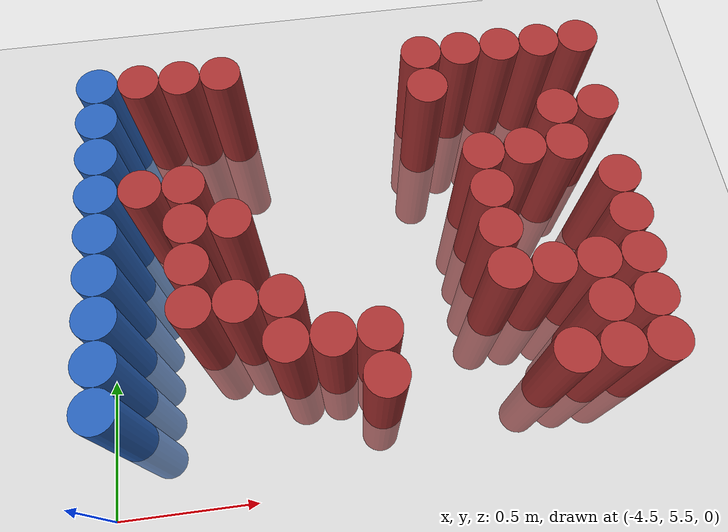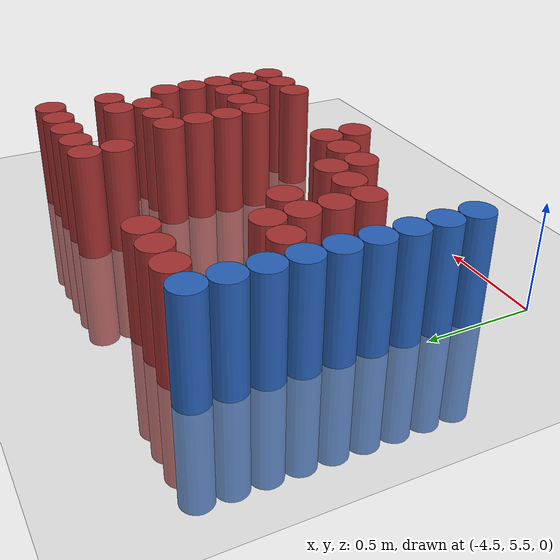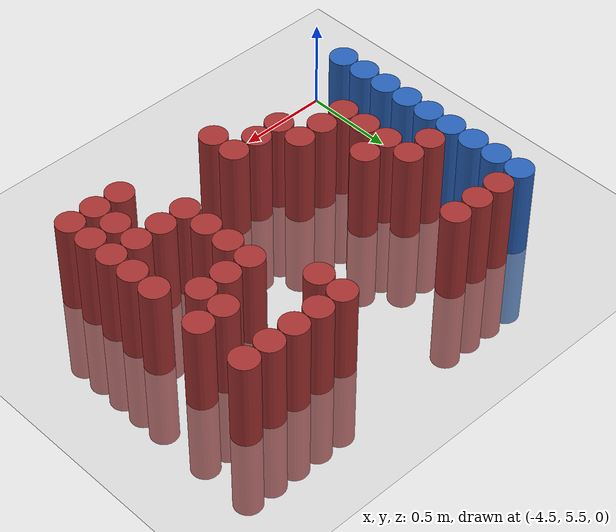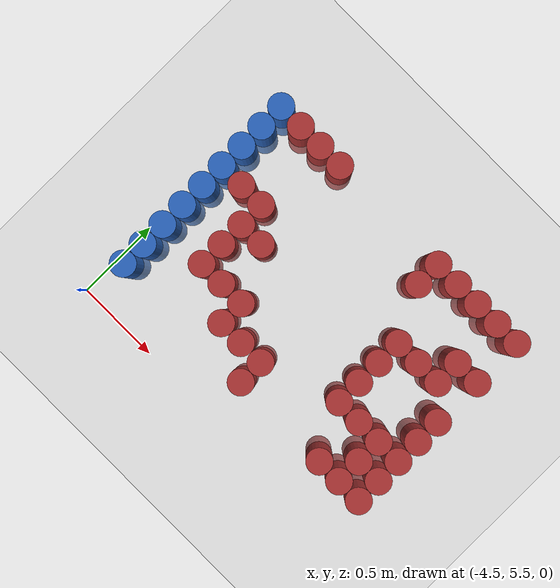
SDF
<sdf version="1.6">
 <world name="default">
  <model name="ground_plane">
   <static>1</static>
   <link name="link">
    <collision name="collision">
     <geometry><plane><normal>0 0 1</normal><size>100 100</size></plane></geometry>
     <surface><friction><ode><mu>100</mu><mu2>50</mu2></ode></friction></surface>
    </collision>
    <visual name="visual">
     <cast_shadows>0</cast_shadows>
     <geometry><plane><normal>0 0 1</normal><size>100 100</size></plane></geometry>
     <material>
      <script><uri>file://media/materials/scripts/gazebo.material</uri><name>Gazebo/Grey</name></script>
     </material>
    </visual>
   </link>
  </model>
  <model name="unit_cylinder_100">
   <static>1</static>
   <pose>-4.425000 5.775000 0.000000 0.000000 0.000000 0.000000</pose>
   <link name="link">
    <inertial>
     <mass>1</mass>
     <inertia><ixx>0.145833</ixx><ixy>0</ixy><ixz>0</ixz><iyy>0.145833</iyy><iyz>0</iyz><izz>0.125</izz></inertia>
    </inertial>
    <collision name="collision">
     <geometry><cylinder><radius>0.075000</radius><length>1</length></cylinder></geometry>
    </collision>
    <visual name="visual">
     <geometry><cylinder><radius>0.075000</radius><length>1</length></cylinder></geometry>
     <material>
      <ambient>0.152000 0.379000 0.720000 1</ambient>
      <diffuse>0.152000 0.379000 0.720000 1</diffuse>
     </material>
     <material>
      <script><name>Gazebo/Grey</name><uri>file://media/materials/scripts/gazebo.material</uri></script>
     </material>
    </visual>
   </link>
  </model>
  <model name="unit_cylinder_101">
   <static>1</static>
   <pose>-4.425000 5.925000 0.000000 0.000000 0.000000 0.000000</pose>
   <link name="link">
    <inertial>
     <mass>1</mass>
     <inertia><ixx>0.145833</ixx><ixy>0</ixy><ixz>0</ixz><iyy>0.145833</iyy><iyz>0</iyz><izz>0.125</izz></inertia>
    </inertial>
    <collision name="collision">
     <geometry><cylinder><radius>0.075000</radius><length>1</length></cylinder></geometry>
    </collision>
    <visual name="visual">
     <geometry><cylinder><radius>0.075000</radius><length>1</length></cylinder></geometry>
     <material>
      <ambient>0.152000 0.379000 0.720000 1</ambient>
      <diffuse>0.152000 0.379000 0.720000 1</diffuse>
     </material>
     <material>
      <script><name>Gazebo/Grey</name><uri>file://media/materials/scripts/gazebo.material</uri></script>
     </material>
    </visual>
   </link>
  </model>
  <model name="unit_cylinder_102">
   <static>1</static>
   <pose>-4.425000 6.075000 0.000000 0.000000 0.000000 0.000000</pose>
   <link name="link">
    <inertial>
     <mass>1</mass>
     <inertia><ixx>0.145833</ixx><ixy>0</ixy><ixz>0</ixz><iyy>0.145833</iyy><iyz>0</iyz><izz>0.125</izz></inertia>
    </inertial>
    <collision name="collision">
     <geometry><cylinder><radius>0.075000</radius><length>1</length></cylinder></geometry>
    </collision>
    <visual name="visual">
     <geometry><cylinder><radius>0.075000</radius><length>1</length></cylinder></geometry>
     <material>
      <ambient>0.152000 0.379000 0.720000 1</ambient>
      <diffuse>0.152000 0.379000 0.720000 1</diffuse>
     </material>
     <material>
      <script><name>Gazebo/Grey</name><uri>file://media/materials/scripts/gazebo.material</uri></script>
     </material>
    </visual>
   </link>
  </model>
  <model name="unit_cylinder_103">
   <static>1</static>
   <pose>-4.425000 6.225000 0.000000 0.000000 0.000000 0.000000</pose>
   <link name="link">
    <inertial>
     <mass>1</mass>
     <inertia><ixx>0.145833</ixx><ixy>0</ixy><ixz>0</ixz><iyy>0.145833</iyy><iyz>0</iyz><izz>0.125</izz></inertia>
    </inertial>
    <collision name="collision">
     <geometry><cylinder><radius>0.075000</radius><length>1</length></cylinder></geometry>
    </collision>
    <visual name="visual">
     <geometry><cylinder><radius>0.075000</radius><length>1</length></cylinder></geometry>
     <material>
      <ambient>0.152000 0.379000 0.720000 1</ambient>
      <diffuse>0.152000 0.379000 0.720000 1</diffuse>
     </material>
     <material>
      <script><name>Gazebo/Grey</name><uri>file://media/materials/scripts/gazebo.material</uri></script>
     </material>
    </visual>
   </link>
  </model>
  <model name="unit_cylinder_104">
   <static>1</static>
   <pose>-4.425000 6.375000 0.000000 0.000000 0.000000 0.000000</pose>
   <link name="link">
    <inertial>
     <mass>1</mass>
     <inertia><ixx>0.145833</ixx><ixy>0</ixy><ixz>0</ixz><iyy>0.145833</iyy><iyz>0</iyz><izz>0.125</izz></inertia>
    </inertial>
    <collision name="collision">
     <geometry><cylinder><radius>0.075000</radius><length>1</length></cylinder></geometry>
    </collision>
    <visual name="visual">
     <geometry><cylinder><radius>0.075000</radius><length>1</length></cylinder></geometry>
     <material>
      <ambient>0.152000 0.379000 0.720000 1</ambient>
      <diffuse>0.152000 0.379000 0.720000 1</diffuse>
     </material>
     <material>
      <script><name>Gazebo/Grey</name><uri>file://media/materials/scripts/gazebo.material</uri></script>
     </material>
    </visual>
   </link>
  </model>
  <model name="unit_cylinder_105">
   <static>1</static>
   <pose>-4.425000 6.525000 0.000000 0.000000 0.000000 0.000000</pose>
   <link name="link">
    <inertial>
     <mass>1</mass>
     <inertia><ixx>0.145833</ixx><ixy>0</ixy><ixz>0</ixz><iyy>0.145833</iyy><iyz>0</iyz><izz>0.125</izz></inertia>
    </inertial>
    <collision name="collision">
     <geometry><cylinder><radius>0.075000</radius><length>1</length></cylinder></geometry>
    </collision>
    <visual name="visual">
     <geometry><cylinder><radius>0.075000</radius><length>1</length></cylinder></geometry>
     <material>
      <ambient>0.152000 0.379000 0.720000 1</ambient>
      <diffuse>0.152000 0.379000 0.720000 1</diffuse>
     </material>
     <material>
      <script><name>Gazebo/Grey</name><uri>file://media/materials/scripts/gazebo.material</uri></script>
     </material>
    </visual>
   </link>
  </model>
  <model name="unit_cylinder_106">
   <static>1</static>
   <pose>-4.425000 6.675000 0.000000 0.000000 0.000000 0.000000</pose>
   <link name="link">
    <inertial>
     <mass>1</mass>
     <inertia><ixx>0.145833</ixx><ixy>0</ixy><ixz>0</ixz><iyy>0.145833</iyy><iyz>0</iyz><izz>0.125</izz></inertia>
    </inertial>
    <collision name="collision">
     <geometry><cylinder><radius>0.075000</radius><length>1</length></cylinder></geometry>
    </collision>
    <visual name="visual">
     <geometry><cylinder><radius>0.075000</radius><length>1</length></cylinder></geometry>
     <material>
      <ambient>0.152000 0.379000 0.720000 1</ambient>
      <diffuse>0.152000 0.379000 0.720000 1</diffuse>
     </material>
     <material>
      <script><name>Gazebo/Grey</name><uri>file://media/materials/scripts/gazebo.material</uri></script>
     </material>
    </visual>
   </link>
  </model>
  <model name="unit_cylinder_107">
   <static>1</static>
   <pose>-4.425000 6.825000 0.000000 0.000000 0.000000 0.000000</pose>
   <link name="link">
    <inertial>
     <mass>1</mass>
     <inertia><ixx>0.145833</ixx><ixy>0</ixy><ixz>0</ixz><iyy>0.145833</iyy><iyz>0</iyz><izz>0.125</izz></inertia>
    </inertial>
    <collision name="collision">
     <geometry><cylinder><radius>0.075000</radius><length>1</length></cylinder></geometry>
    </collision>
    <visual name="visual">
     <geometry><cylinder><radius>0.075000</radius><length>1</length></cylinder></geometry>
     <material>
      <ambient>0.152000 0.379000 0.720000 1</ambient>
      <diffuse>0.152000 0.379000 0.720000 1</diffuse>
     </material>
     <material>
      <script><name>Gazebo/Grey</name><uri>file://media/materials/scripts/gazebo.material</uri></script>
     </material>
    </visual>
   </link>
  </model>
  <model name="unit_cylinder_108">
   <static>1</static>
   <pose>-4.425000 6.975000 0.000000 0.000000 0.000000 0.000000</pose>
   <link name="link">
    <inertial>
     <mass>1</mass>
     <inertia><ixx>0.145833</ixx><ixy>0</ixy><ixz>0</ixz><iyy>0.145833</iyy><iyz>0</iyz><izz>0.125</izz></inertia>
    </inertial>
    <collision name="collision">
     <geometry><cylinder><radius>0.075000</radius><length>1</length></cylinder></geometry>
    </collision>
    <visual name="visual">
     <geometry><cylinder><radius>0.075000</radius><length>1</length></cylinder></geometry>
     <material>
      <ambient>0.152000 0.379000 0.720000 1</ambient>
      <diffuse>0.152000 0.379000 0.720000 1</diffuse>
     </material>
     <material>
      <script><name>Gazebo/Grey</name><uri>file://media/materials/scripts/gazebo.material</uri></script>
     </material>
    </visual>
   </link>
  </model>
  <model name="unit_cylinder_127">
   <static>1</static>
   <pose>-4.275000 6.525000 0.000000 0.000000 0.000000 0.000000</pose>
   <link name="link">
    <inertial>
     <mass>1</mass>
     <inertia><ixx>0.145833</ixx><ixy>0</ixy><ixz>0</ixz><iyy>0.145833</iyy><iyz>0</iyz><izz>0.125</izz></inertia>
    </inertial>
    <collision name="collision">
     <geometry><cylinder><radius>0.075000</radius><length>1</length></cylinder></geometry>
    </collision>
    <visual name="visual">
     <geometry><cylinder><radius>0.075000</radius><length>1</length></cylinder></geometry>
     <material>
      <ambient>0.648000 0.192000 0.192000 1</ambient>
      <diffuse>0.648000 0.192000 0.192000 1</diffuse>
     </material>
     <material>
      <script><name>Gazebo/Grey</name><uri>file://media/materials/scripts/gazebo.material</uri></script>
     </material>
    </visual>
   </link>
  </model>
  <model name="unit_cylinder_128">
   <static>1</static>
   <pose>-4.275000 6.975000 0.000000 0.000000 0.000000 0.000000</pose>
   <link name="link">
    <inertial>
     <mass>1</mass>
     <inertia><ixx>0.145833</ixx><ixy>0</ixy><ixz>0</ixz><iyy>0.145833</iyy><iyz>0</iyz><izz>0.125</izz></inertia>
    </inertial>
    <collision name="collision">
     <geometry><cylinder><radius>0.075000</radius><length>1</length></cylinder></geometry>
    </collision>
    <visual name="visual">
     <geometry><cylinder><radius>0.075000</radius><length>1</length></cylinder></geometry>
     <material>
      <ambient>0.648000 0.192000 0.192000 1</ambient>
      <diffuse>0.648000 0.192000 0.192000 1</diffuse>
     </material>
     <material>
      <script><name>Gazebo/Grey</name><uri>file://media/materials/scripts/gazebo.material</uri></script>
     </material>
    </visual>
   </link>
  </model>
  <model name="unit_cylinder_133">
   <static>1</static>
   <pose>-4.125000 6.075000 0.000000 0.000000 0.000000 0.000000</pose>
   <link name="link">
    <inertial>
     <mass>1</mass>
     <inertia><ixx>0.145833</ixx><ixy>0</ixy><ixz>0</ixz><iyy>0.145833</iyy><iyz>0</iyz><izz>0.125</izz></inertia>
    </inertial>
    <collision name="collision">
     <geometry><cylinder><radius>0.075000</radius><length>1</length></cylinder></geometry>
    </collision>
    <visual name="visual">
     <geometry><cylinder><radius>0.075000</radius><length>1</length></cylinder></geometry>
     <material>
      <ambient>0.648000 0.192000 0.192000 1</ambient>
      <diffuse>0.648000 0.192000 0.192000 1</diffuse>
     </material>
     <material>
      <script><name>Gazebo/Grey</name><uri>file://media/materials/scripts/gazebo.material</uri></script>
     </material>
    </visual>
   </link>
  </model>
  <model name="unit_cylinder_134">
   <static>1</static>
   <pose>-4.125000 6.225000 0.000000 0.000000 0.000000 0.000000</pose>
   <link name="link">
    <inertial>
     <mass>1</mass>
     <inertia><ixx>0.145833</ixx><ixy>0</ixy><ixz>0</ixz><iyy>0.145833</iyy><iyz>0</iyz><izz>0.125</izz></inertia>
    </inertial>
    <collision name="collision">
     <geometry><cylinder><radius>0.075000</radius><length>1</length></cylinder></geometry>
    </collision>
    <visual name="visual">
     <geometry><cylinder><radius>0.075000</radius><length>1</length></cylinder></geometry>
     <material>
      <ambient>0.648000 0.192000 0.192000 1</ambient>
      <diffuse>0.648000 0.192000 0.192000 1</diffuse>
     </material>
     <material>
      <script><name>Gazebo/Grey</name><uri>file://media/materials/scripts/gazebo.material</uri></script>
     </material>
    </visual>
   </link>
  </model>
  <model name="unit_cylinder_135">
   <static>1</static>
   <pose>-4.125000 6.375000 0.000000 0.000000 0.000000 0.000000</pose>
   <link name="link">
    <inertial>
     <mass>1</mass>
     <inertia><ixx>0.145833</ixx><ixy>0</ixy><ixz>0</ixz><iyy>0.145833</iyy><iyz>0</iyz><izz>0.125</izz></inertia>
    </inertial>
    <collision name="collision">
     <geometry><cylinder><radius>0.075000</radius><length>1</length></cylinder></geometry>
    </collision>
    <visual name="visual">
     <geometry><cylinder><radius>0.075000</radius><length>1</length></cylinder></geometry>
     <material>
      <ambient>0.648000 0.192000 0.192000 1</ambient>
      <diffuse>0.648000 0.192000 0.192000 1</diffuse>
     </material>
     <material>
      <script><name>Gazebo/Grey</name><uri>file://media/materials/scripts/gazebo.material</uri></script>
     </material>
    </visual>
   </link>
  </model>
  <model name="unit_cylinder_136">
   <static>1</static>
   <pose>-4.125000 6.525000 0.000000 0.000000 0.000000 0.000000</pose>
   <link name="link">
    <inertial>
     <mass>1</mass>
     <inertia><ixx>0.145833</ixx><ixy>0</ixy><ixz>0</ixz><iyy>0.145833</iyy><iyz>0</iyz><izz>0.125</izz></inertia>
    </inertial>
    <collision name="collision">
     <geometry><cylinder><radius>0.075000</radius><length>1</length></cylinder></geometry>
    </collision>
    <visual name="visual">
     <geometry><cylinder><radius>0.075000</radius><length>1</length></cylinder></geometry>
     <material>
      <ambient>0.648000 0.192000 0.192000 1</ambient>
      <diffuse>0.648000 0.192000 0.192000 1</diffuse>
     </material>
     <material>
      <script><name>Gazebo/Grey</name><uri>file://media/materials/scripts/gazebo.material</uri></script>
     </material>
    </visual>
   </link>
  </model>
  <model name="unit_cylinder_137">
   <static>1</static>
   <pose>-4.125000 6.975000 0.000000 0.000000 0.000000 0.000000</pose>
   <link name="link">
    <inertial>
     <mass>1</mass>
     <inertia><ixx>0.145833</ixx><ixy>0</ixy><ixz>0</ixz><iyy>0.145833</iyy><iyz>0</iyz><izz>0.125</izz></inertia>
    </inertial>
    <collision name="collision">
     <geometry><cylinder><radius>0.075000</radius><length>1</length></cylinder></geometry>
    </collision>
    <visual name="visual">
     <geometry><cylinder><radius>0.075000</radius><length>1</length></cylinder></geometry>
     <material>
      <ambient>0.648000 0.192000 0.192000 1</ambient>
      <diffuse>0.648000 0.192000 0.192000 1</diffuse>
     </material>
     <material>
      <script><name>Gazebo/Grey</name><uri>file://media/materials/scripts/gazebo.material</uri></script>
     </material>
    </visual>
   </link>
  </model>
  <model name="unit_cylinder_140">
   <static>1</static>
   <pose>-3.975000 6.075000 0.000000 0.000000 0.000000 0.000000</pose>
   <link name="link">
    <inertial>
     <mass>1</mass>
     <inertia><ixx>0.145833</ixx><ixy>0</ixy><ixz>0</ixz><iyy>0.145833</iyy><iyz>0</iyz><izz>0.125</izz></inertia>
    </inertial>
    <collision name="collision">
     <geometry><cylinder><radius>0.075000</radius><length>1</length></cylinder></geometry>
    </collision>
    <visual name="visual">
     <geometry><cylinder><radius>0.075000</radius><length>1</length></cylinder></geometry>
     <material>
      <ambient>0.648000 0.192000 0.192000 1</ambient>
      <diffuse>0.648000 0.192000 0.192000 1</diffuse>
     </material>
     <material>
      <script><name>Gazebo/Grey</name><uri>file://media/materials/scripts/gazebo.material</uri></script>
     </material>
    </visual>
   </link>
  </model>
  <model name="unit_cylinder_141">
   <static>1</static>
   <pose>-3.975000 6.375000 0.000000 0.000000 0.000000 0.000000</pose>
   <link name="link">
    <inertial>
     <mass>1</mass>
     <inertia><ixx>0.145833</ixx><ixy>0</ixy><ixz>0</ixz><iyy>0.145833</iyy><iyz>0</iyz><izz>0.125</izz></inertia>
    </inertial>
    <collision name="collision">
     <geometry><cylinder><radius>0.075000</radius><length>1</length></cylinder></geometry>
    </collision>
    <visual name="visual">
     <geometry><cylinder><radius>0.075000</radius><length>1</length></cylinder></geometry>
     <material>
      <ambient>0.648000 0.192000 0.192000 1</ambient>
      <diffuse>0.648000 0.192000 0.192000 1</diffuse>
     </material>
     <material>
      <script><name>Gazebo/Grey</name><uri>file://media/materials/scripts/gazebo.material</uri></script>
     </material>
    </visual>
   </link>
  </model>
  <model name="unit_cylinder_142">
   <static>1</static>
   <pose>-3.975000 6.975000 0.000000 0.000000 0.000000 0.000000</pose>
   <link name="link">
    <inertial>
     <mass>1</mass>
     <inertia><ixx>0.145833</ixx><ixy>0</ixy><ixz>0</ixz><iyy>0.145833</iyy><iyz>0</iyz><izz>0.125</izz></inertia>
    </inertial>
    <collision name="collision">
     <geometry><cylinder><radius>0.075000</radius><length>1</length></cylinder></geometry>
    </collision>
    <visual name="visual">
     <geometry><cylinder><radius>0.075000</radius><length>1</length></cylinder></geometry>
     <material>
      <ambient>0.648000 0.192000 0.192000 1</ambient>
      <diffuse>0.648000 0.192000 0.192000 1</diffuse>
     </material>
     <material>
      <script><name>Gazebo/Grey</name><uri>file://media/materials/scripts/gazebo.material</uri></script>
     </material>
    </visual>
   </link>
  </model>
  <model name="unit_cylinder_147">
   <static>1</static>
   <pose>-3.825000 5.925000 0.000000 0.000000 0.000000 0.000000</pose>
   <link name="link">
    <inertial>
     <mass>1</mass>
     <inertia><ixx>0.145833</ixx><ixy>0</ixy><ixz>0</ixz><iyy>0.145833</iyy><iyz>0</iyz><izz>0.125</izz></inertia>
    </inertial>
    <collision name="collision">
     <geometry><cylinder><radius>0.075000</radius><length>1</length></cylinder></geometry>
    </collision>
    <visual name="visual">
     <geometry><cylinder><radius>0.075000</radius><length>1</length></cylinder></geometry>
     <material>
      <ambient>0.648000 0.192000 0.192000 1</ambient>
      <diffuse>0.648000 0.192000 0.192000 1</diffuse>
     </material>
     <material>
      <script><name>Gazebo/Grey</name><uri>file://media/materials/scripts/gazebo.material</uri></script>
     </material>
    </visual>
   </link>
  </model>
  <model name="unit_cylinder_148">
   <static>1</static>
   <pose>-3.825000 6.075000 0.000000 0.000000 0.000000 0.000000</pose>
   <link name="link">
    <inertial>
     <mass>1</mass>
     <inertia><ixx>0.145833</ixx><ixy>0</ixy><ixz>0</ixz><iyy>0.145833</iyy><iyz>0</iyz><izz>0.125</izz></inertia>
    </inertial>
    <collision name="collision">
     <geometry><cylinder><radius>0.075000</radius><length>1</length></cylinder></geometry>
    </collision>
    <visual name="visual">
     <geometry><cylinder><radius>0.075000</radius><length>1</length></cylinder></geometry>
     <material>
      <ambient>0.648000 0.192000 0.192000 1</ambient>
      <diffuse>0.648000 0.192000 0.192000 1</diffuse>
     </material>
     <material>
      <script><name>Gazebo/Grey</name><uri>file://media/materials/scripts/gazebo.material</uri></script>
     </material>
    </visual>
   </link>
  </model>
  <model name="unit_cylinder_155">
   <static>1</static>
   <pose>-3.675000 5.925000 0.000000 0.000000 0.000000 0.000000</pose>
   <link name="link">
    <inertial>
     <mass>1</mass>
     <inertia><ixx>0.145833</ixx><ixy>0</ixy><ixz>0</ixz><iyy>0.145833</iyy><iyz>0</iyz><izz>0.125</izz></inertia>
    </inertial>
    <collision name="collision">
     <geometry><cylinder><radius>0.075000</radius><length>1</length></cylinder></geometry>
    </collision>
    <visual name="visual">
     <geometry><cylinder><radius>0.075000</radius><length>1</length></cylinder></geometry>
     <material>
      <ambient>0.648000 0.192000 0.192000 1</ambient>
      <diffuse>0.648000 0.192000 0.192000 1</diffuse>
     </material>
     <material>
      <script><name>Gazebo/Grey</name><uri>file://media/materials/scripts/gazebo.material</uri></script>
     </material>
    </visual>
   </link>
  </model>
  <model name="unit_cylinder_160">
   <static>1</static>
   <pose>-3.525000 5.775000 0.000000 0.000000 0.000000 0.000000</pose>
   <link name="link">
    <inertial>
     <mass>1</mass>
     <inertia><ixx>0.145833</ixx><ixy>0</ixy><ixz>0</ixz><iyy>0.145833</iyy><iyz>0</iyz><izz>0.125</izz></inertia>
    </inertial>
    <collision name="collision">
     <geometry><cylinder><radius>0.075000</radius><length>1</length></cylinder></geometry>
    </collision>
    <visual name="visual">
     <geometry><cylinder><radius>0.075000</radius><length>1</length></cylinder></geometry>
     <material>
      <ambient>0.648000 0.192000 0.192000 1</ambient>
      <diffuse>0.648000 0.192000 0.192000 1</diffuse>
     </material>
     <material>
      <script><name>Gazebo/Grey</name><uri>file://media/materials/scripts/gazebo.material</uri></script>
     </material>
    </visual>
   </link>
  </model>
  <model name="unit_cylinder_161">
   <static>1</static>
   <pose>-3.525000 5.925000 0.000000 0.000000 0.000000 0.000000</pose>
   <link name="link">
    <inertial>
     <mass>1</mass>
     <inertia><ixx>0.145833</ixx><ixy>0</ixy><ixz>0</ixz><iyy>0.145833</iyy><iyz>0</iyz><izz>0.125</izz></inertia>
    </inertial>
    <collision name="collision">
     <geometry><cylinder><radius>0.075000</radius><length>1</length></cylinder></geometry>
    </collision>
    <visual name="visual">
     <geometry><cylinder><radius>0.075000</radius><length>1</length></cylinder></geometry>
     <material>
      <ambient>0.648000 0.192000 0.192000 1</ambient>
      <diffuse>0.648000 0.192000 0.192000 1</diffuse>
     </material>
     <material>
      <script><name>Gazebo/Grey</name><uri>file://media/materials/scripts/gazebo.material</uri></script>
     </material>
    </visual>
   </link>
  </model>
  <model name="unit_cylinder_170">
   <static>1</static>
   <pose>-3.225000 6.825000 0.000000 0.000000 0.000000 0.000000</pose>
   <link name="link">
    <inertial>
     <mass>1</mass>
     <inertia><ixx>0.145833</ixx><ixy>0</ixy><ixz>0</ixz><iyy>0.145833</iyy><iyz>0</iyz><izz>0.125</izz></inertia>
    </inertial>
    <collision name="collision">
     <geometry><cylinder><radius>0.075000</radius><length>1</length></cylinder></geometry>
    </collision>
    <visual name="visual">
     <geometry><cylinder><radius>0.075000</radius><length>1</length></cylinder></geometry>
     <material>
      <ambient>0.648000 0.192000 0.192000 1</ambient>
      <diffuse>0.648000 0.192000 0.192000 1</diffuse>
     </material>
     <material>
      <script><name>Gazebo/Grey</name><uri>file://media/materials/scripts/gazebo.material</uri></script>
     </material>
    </visual>
   </link>
  </model>
  <model name="unit_cylinder_171">
   <static>1</static>
   <pose>-3.225000 6.975000 0.000000 0.000000 0.000000 0.000000</pose>
   <link name="link">
    <inertial>
     <mass>1</mass>
     <inertia><ixx>0.145833</ixx><ixy>0</ixy><ixz>0</ixz><iyy>0.145833</iyy><iyz>0</iyz><izz>0.125</izz></inertia>
    </inertial>
    <collision name="collision">
     <geometry><cylinder><radius>0.075000</radius><length>1</length></cylinder></geometry>
    </collision>
    <visual name="visual">
     <geometry><cylinder><radius>0.075000</radius><length>1</length></cylinder></geometry>
     <material>
      <ambient>0.648000 0.192000 0.192000 1</ambient>
      <diffuse>0.648000 0.192000 0.192000 1</diffuse>
     </material>
     <material>
      <script><name>Gazebo/Grey</name><uri>file://media/materials/scripts/gazebo.material</uri></script>
     </material>
    </visual>
   </link>
  </model>
  <model name="unit_cylinder_178">
   <static>1</static>
   <pose>-3.075000 6.075000 0.000000 0.000000 0.000000 0.000000</pose>
   <link name="link">
    <inertial>
     <mass>1</mass>
     <inertia><ixx>0.145833</ixx><ixy>0</ixy><ixz>0</ixz><iyy>0.145833</iyy><iyz>0</iyz><izz>0.125</izz></inertia>
    </inertial>
    <collision name="collision">
     <geometry><cylinder><radius>0.075000</radius><length>1</length></cylinder></geometry>
    </collision>
    <visual name="visual">
     <geometry><cylinder><radius>0.075000</radius><length>1</length></cylinder></geometry>
     <material>
      <ambient>0.648000 0.192000 0.192000 1</ambient>
      <diffuse>0.648000 0.192000 0.192000 1</diffuse>
     </material>
     <material>
      <script><name>Gazebo/Grey</name><uri>file://media/materials/scripts/gazebo.material</uri></script>
     </material>
    </visual>
   </link>
  </model>
  <model name="unit_cylinder_179">
   <static>1</static>
   <pose>-3.075000 6.225000 0.000000 0.000000 0.000000 0.000000</pose>
   <link name="link">
    <inertial>
     <mass>1</mass>
     <inertia><ixx>0.145833</ixx><ixy>0</ixy><ixz>0</ixz><iyy>0.145833</iyy><iyz>0</iyz><izz>0.125</izz></inertia>
    </inertial>
    <collision name="collision">
     <geometry><cylinder><radius>0.075000</radius><length>1</length></cylinder></geometry>
    </collision>
    <visual name="visual">
     <geometry><cylinder><radius>0.075000</radius><length>1</length></cylinder></geometry>
     <material>
      <ambient>0.648000 0.192000 0.192000 1</ambient>
      <diffuse>0.648000 0.192000 0.192000 1</diffuse>
     </material>
     <material>
      <script><name>Gazebo/Grey</name><uri>file://media/materials/scripts/gazebo.material</uri></script>
     </material>
    </visual>
   </link>
  </model>
  <model name="unit_cylinder_180">
   <static>1</static>
   <pose>-3.075000 6.375000 0.000000 0.000000 0.000000 0.000000</pose>
   <link name="link">
    <inertial>
     <mass>1</mass>
     <inertia><ixx>0.145833</ixx><ixy>0</ixy><ixz>0</ixz><iyy>0.145833</iyy><iyz>0</iyz><izz>0.125</izz></inertia>
    </inertial>
    <collision name="collision">
     <geometry><cylinder><radius>0.075000</radius><length>1</length></cylinder></geometry>
    </collision>
    <visual name="visual">
     <geometry><cylinder><radius>0.075000</radius><length>1</length></cylinder></geometry>
     <material>
      <ambient>0.648000 0.192000 0.192000 1</ambient>
      <diffuse>0.648000 0.192000 0.192000 1</diffuse>
     </material>
     <material>
      <script><name>Gazebo/Grey</name><uri>file://media/materials/scripts/gazebo.material</uri></script>
     </material>
    </visual>
   </link>
  </model>
  <model name="unit_cylinder_181">
   <static>1</static>
   <pose>-3.075000 6.525000 0.000000 0.000000 0.000000 0.000000</pose>
   <link name="link">
    <inertial>
     <mass>1</mass>
     <inertia><ixx>0.145833</ixx><ixy>0</ixy><ixz>0</ixz><iyy>0.145833</iyy><iyz>0</iyz><izz>0.125</izz></inertia>
    </inertial>
    <collision name="collision">
     <geometry><cylinder><radius>0.075000</radius><length>1</length></cylinder></geometry>
    </collision>
    <visual name="visual">
     <geometry><cylinder><radius>0.075000</radius><length>1</length></cylinder></geometry>
     <material>
      <ambient>0.648000 0.192000 0.192000 1</ambient>
      <diffuse>0.648000 0.192000 0.192000 1</diffuse>
     </material>
     <material>
      <script><name>Gazebo/Grey</name><uri>file://media/materials/scripts/gazebo.material</uri></script>
     </material>
    </visual>
   </link>
  </model>
  <model name="unit_cylinder_182">
   <static>1</static>
   <pose>-3.075000 6.975000 0.000000 0.000000 0.000000 0.000000</pose>
   <link name="link">
    <inertial>
     <mass>1</mass>
     <inertia><ixx>0.145833</ixx><ixy>0</ixy><ixz>0</ixz><iyy>0.145833</iyy><iyz>0</iyz><izz>0.125</izz></inertia>
    </inertial>
    <collision name="collision">
     <geometry><cylinder><radius>0.075000</radius><length>1</length></cylinder></geometry>
    </collision>
    <visual name="visual">
     <geometry><cylinder><radius>0.075000</radius><length>1</length></cylinder></geometry>
     <material>
      <ambient>0.648000 0.192000 0.192000 1</ambient>
      <diffuse>0.648000 0.192000 0.192000 1</diffuse>
     </material>
     <material>
      <script><name>Gazebo/Grey</name><uri>file://media/materials/scripts/gazebo.material</uri></script>
     </material>
    </visual>
   </link>
  </model>
  <model name="unit_cylinder_191">
   <static>1</static>
   <pose>-2.925000 5.775000 0.000000 0.000000 0.000000 0.000000</pose>
   <link name="link">
    <inertial>
     <mass>1</mass>
     <inertia><ixx>0.145833</ixx><ixy>0</ixy><ixz>0</ixz><iyy>0.145833</iyy><iyz>0</iyz><izz>0.125</izz></inertia>
    </inertial>
    <collision name="collision">
     <geometry><cylinder><radius>0.075000</radius><length>1</length></cylinder></geometry>
    </collision>
    <visual name="visual">
     <geometry><cylinder><radius>0.075000</radius><length>1</length></cylinder></geometry>
     <material>
      <ambient>0.648000 0.192000 0.192000 1</ambient>
      <diffuse>0.648000 0.192000 0.192000 1</diffuse>
     </material>
     <material>
      <script><name>Gazebo/Grey</name><uri>file://media/materials/scripts/gazebo.material</uri></script>
     </material>
    </visual>
   </link>
  </model>
  <model name="unit_cylinder_192">
   <static>1</static>
   <pose>-2.925000 6.075000 0.000000 0.000000 0.000000 0.000000</pose>
   <link name="link">
    <inertial>
     <mass>1</mass>
     <inertia><ixx>0.145833</ixx><ixy>0</ixy><ixz>0</ixz><iyy>0.145833</iyy><iyz>0</iyz><izz>0.125</izz></inertia>
    </inertial>
    <collision name="collision">
     <geometry><cylinder><radius>0.075000</radius><length>1</length></cylinder></geometry>
    </collision>
    <visual name="visual">
     <geometry><cylinder><radius>0.075000</radius><length>1</length></cylinder></geometry>
     <material>
      <ambient>0.648000 0.192000 0.192000 1</ambient>
      <diffuse>0.648000 0.192000 0.192000 1</diffuse>
     </material>
     <material>
      <script><name>Gazebo/Grey</name><uri>file://media/materials/scripts/gazebo.material</uri></script>
     </material>
    </visual>
   </link>
  </model>
  <model name="unit_cylinder_193">
   <static>1</static>
   <pose>-2.925000 6.525000 0.000000 0.000000 0.000000 0.000000</pose>
   <link name="link">
    <inertial>
     <mass>1</mass>
     <inertia><ixx>0.145833</ixx><ixy>0</ixy><ixz>0</ixz><iyy>0.145833</iyy><iyz>0</iyz><izz>0.125</izz></inertia>
    </inertial>
    <collision name="collision">
     <geometry><cylinder><radius>0.075000</radius><length>1</length></cylinder></geometry>
    </collision>
    <visual name="visual">
     <geometry><cylinder><radius>0.075000</radius><length>1</length></cylinder></geometry>
     <material>
      <ambient>0.648000 0.192000 0.192000 1</ambient>
      <diffuse>0.648000 0.192000 0.192000 1</diffuse>
     </material>
     <material>
      <script><name>Gazebo/Grey</name><uri>file://media/materials/scripts/gazebo.material</uri></script>
     </material>
    </visual>
   </link>
  </model>
  <model name="unit_cylinder_194">
   <static>1</static>
   <pose>-2.925000 6.975000 0.000000 0.000000 0.000000 0.000000</pose>
   <link name="link">
    <inertial>
     <mass>1</mass>
     <inertia><ixx>0.145833</ixx><ixy>0</ixy><ixz>0</ixz><iyy>0.145833</iyy><iyz>0</iyz><izz>0.125</izz></inertia>
    </inertial>
    <collision name="collision">
     <geometry><cylinder><radius>0.075000</radius><length>1</length></cylinder></geometry>
    </collision>
    <visual name="visual">
     <geometry><cylinder><radius>0.075000</radius><length>1</length></cylinder></geometry>
     <material>
      <ambient>0.648000 0.192000 0.192000 1</ambient>
      <diffuse>0.648000 0.192000 0.192000 1</diffuse>
     </material>
     <material>
      <script><name>Gazebo/Grey</name><uri>file://media/materials/scripts/gazebo.material</uri></script>
     </material>
    </visual>
   </link>
  </model>
  <model name="unit_cylinder_200">
   <static>1</static>
   <pose>-2.775000 5.775000 0.000000 0.000000 0.000000 0.000000</pose>
   <link name="link">
    <inertial>
     <mass>1</mass>
     <inertia><ixx>0.145833</ixx><ixy>0</ixy><ixz>0</ixz><iyy>0.145833</iyy><iyz>0</iyz><izz>0.125</izz></inertia>
    </inertial>
    <collision name="collision">
     <geometry><cylinder><radius>0.075000</radius><length>1</length></cylinder></geometry>
    </collision>
    <visual name="visual">
     <geometry><cylinder><radius>0.075000</radius><length>1</length></cylinder></geometry>
     <material>
      <ambient>0.648000 0.192000 0.192000 1</ambient>
      <diffuse>0.648000 0.192000 0.192000 1</diffuse>
     </material>
     <material>
      <script><name>Gazebo/Grey</name><uri>file://media/materials/scripts/gazebo.material</uri></script>
     </material>
    </visual>
   </link>
  </model>
  <model name="unit_cylinder_201">
   <static>1</static>
   <pose>-2.775000 5.925000 0.000000 0.000000 0.000000 0.000000</pose>
   <link name="link">
    <inertial>
     <mass>1</mass>
     <inertia><ixx>0.145833</ixx><ixy>0</ixy><ixz>0</ixz><iyy>0.145833</iyy><iyz>0</iyz><izz>0.125</izz></inertia>
    </inertial>
    <collision name="collision">
     <geometry><cylinder><radius>0.075000</radius><length>1</length></cylinder></geometry>
    </collision>
    <visual name="visual">
     <geometry><cylinder><radius>0.075000</radius><length>1</length></cylinder></geometry>
     <material>
      <ambient>0.648000 0.192000 0.192000 1</ambient>
      <diffuse>0.648000 0.192000 0.192000 1</diffuse>
     </material>
     <material>
      <script><name>Gazebo/Grey</name><uri>file://media/materials/scripts/gazebo.material</uri></script>
     </material>
    </visual>
   </link>
  </model>
  <model name="unit_cylinder_202">
   <static>1</static>
   <pose>-2.775000 6.075000 0.000000 0.000000 0.000000 0.000000</pose>
   <link name="link">
    <inertial>
     <mass>1</mass>
     <inertia><ixx>0.145833</ixx><ixy>0</ixy><ixz>0</ixz><iyy>0.145833</iyy><iyz>0</iyz><izz>0.125</izz></inertia>
    </inertial>
    <collision name="collision">
     <geometry><cylinder><radius>0.075000</radius><length>1</length></cylinder></geometry>
    </collision>
    <visual name="visual">
     <geometry><cylinder><radius>0.075000</radius><length>1</length></cylinder></geometry>
     <material>
      <ambient>0.648000 0.192000 0.192000 1</ambient>
      <diffuse>0.648000 0.192000 0.192000 1</diffuse>
     </material>
     <material>
      <script><name>Gazebo/Grey</name><uri>file://media/materials/scripts/gazebo.material</uri></script>
     </material>
    </visual>
   </link>
  </model>
  <model name="unit_cylinder_203">
   <static>1</static>
   <pose>-2.775000 6.525000 0.000000 0.000000 0.000000 0.000000</pose>
   <link name="link">
    <inertial>
     <mass>1</mass>
     <inertia><ixx>0.145833</ixx><ixy>0</ixy><ixz>0</ixz><iyy>0.145833</iyy><iyz>0</iyz><izz>0.125</izz></inertia>
    </inertial>
    <collision name="collision">
     <geometry><cylinder><radius>0.075000</radius><length>1</length></cylinder></geometry>
    </collision>
    <visual name="visual">
     <geometry><cylinder><radius>0.075000</radius><length>1</length></cylinder></geometry>
     <material>
      <ambient>0.648000 0.192000 0.192000 1</ambient>
      <diffuse>0.648000 0.192000 0.192000 1</diffuse>
     </material>
     <material>
      <script><name>Gazebo/Grey</name><uri>file://media/materials/scripts/gazebo.material</uri></script>
     </material>
    </visual>
   </link>
  </model>
  <model name="unit_cylinder_204">
   <static>1</static>
   <pose>-2.775000 6.675000 0.000000 0.000000 0.000000 0.000000</pose>
   <link name="link">
    <inertial>
     <mass>1</mass>
     <inertia><ixx>0.145833</ixx><ixy>0</ixy><ixz>0</ixz><iyy>0.145833</iyy><iyz>0</iyz><izz>0.125</izz></inertia>
    </inertial>
    <collision name="collision">
     <geometry><cylinder><radius>0.075000</radius><length>1</length></cylinder></geometry>
    </collision>
    <visual name="visual">
     <geometry><cylinder><radius>0.075000</radius><length>1</length></cylinder></geometry>
     <material>
      <ambient>0.648000 0.192000 0.192000 1</ambient>
      <diffuse>0.648000 0.192000 0.192000 1</diffuse>
     </material>
     <material>
      <script><name>Gazebo/Grey</name><uri>file://media/materials/scripts/gazebo.material</uri></script>
     </material>
    </visual>
   </link>
  </model>
  <model name="unit_cylinder_205">
   <static>1</static>
   <pose>-2.775000 6.975000 0.000000 0.000000 0.000000 0.000000</pose>
   <link name="link">
    <inertial>
     <mass>1</mass>
     <inertia><ixx>0.145833</ixx><ixy>0</ixy><ixz>0</ixz><iyy>0.145833</iyy><iyz>0</iyz><izz>0.125</izz></inertia>
    </inertial>
    <collision name="collision">
     <geometry><cylinder><radius>0.075000</radius><length>1</length></cylinder></geometry>
    </collision>
    <visual name="visual">
     <geometry><cylinder><radius>0.075000</radius><length>1</length></cylinder></geometry>
     <material>
      <ambient>0.648000 0.192000 0.192000 1</ambient>
      <diffuse>0.648000 0.192000 0.192000 1</diffuse>
     </material>
     <material>
      <script><name>Gazebo/Grey</name><uri>file://media/materials/scripts/gazebo.material</uri></script>
     </material>
    </visual>
   </link>
  </model>
  <model name="unit_cylinder_209">
   <static>1</static>
   <pose>-2.625000 5.775000 0.000000 0.000000 0.000000 0.000000</pose>
   <link name="link">
    <inertial>
     <mass>1</mass>
     <inertia><ixx>0.145833</ixx><ixy>0</ixy><ixz>0</ixz><iyy>0.145833</iyy><iyz>0</iyz><izz>0.125</izz></inertia>
    </inertial>
    <collision name="collision">
     <geometry><cylinder><radius>0.075000</radius><length>1</length></cylinder></geometry>
    </collision>
    <visual name="visual">
     <geometry><cylinder><radius>0.075000</radius><length>1</length></cylinder></geometry>
     <material>
      <ambient>0.648000 0.192000 0.192000 1</ambient>
      <diffuse>0.648000 0.192000 0.192000 1</diffuse>
     </material>
     <material>
      <script><name>Gazebo/Grey</name><uri>file://media/materials/scripts/gazebo.material</uri></script>
     </material>
    </visual>
   </link>
  </model>
  <model name="unit_cylinder_210">
   <static>1</static>
   <pose>-2.625000 5.925000 0.000000 0.000000 0.000000 0.000000</pose>
   <link name="link">
    <inertial>
     <mass>1</mass>
     <inertia><ixx>0.145833</ixx><ixy>0</ixy><ixz>0</ixz><iyy>0.145833</iyy><iyz>0</iyz><izz>0.125</izz></inertia>
    </inertial>
    <collision name="collision">
     <geometry><cylinder><radius>0.075000</radius><length>1</length></cylinder></geometry>
    </collision>
    <visual name="visual">
     <geometry><cylinder><radius>0.075000</radius><length>1</length></cylinder></geometry>
     <material>
      <ambient>0.648000 0.192000 0.192000 1</ambient>
      <diffuse>0.648000 0.192000 0.192000 1</diffuse>
     </material>
     <material>
      <script><name>Gazebo/Grey</name><uri>file://media/materials/scripts/gazebo.material</uri></script>
     </material>
    </visual>
   </link>
  </model>
  <model name="unit_cylinder_211">
   <static>1</static>
   <pose>-2.625000 6.075000 0.000000 0.000000 0.000000 0.000000</pose>
   <link name="link">
    <inertial>
     <mass>1</mass>
     <inertia><ixx>0.145833</ixx><ixy>0</ixy><ixz>0</ixz><iyy>0.145833</iyy><iyz>0</iyz><izz>0.125</izz></inertia>
    </inertial>
    <collision name="collision">
     <geometry><cylinder><radius>0.075000</radius><length>1</length></cylinder></geometry>
    </collision>
    <visual name="visual">
     <geometry><cylinder><radius>0.075000</radius><length>1</length></cylinder></geometry>
     <material>
      <ambient>0.648000 0.192000 0.192000 1</ambient>
      <diffuse>0.648000 0.192000 0.192000 1</diffuse>
     </material>
     <material>
      <script><name>Gazebo/Grey</name><uri>file://media/materials/scripts/gazebo.material</uri></script>
     </material>
    </visual>
   </link>
  </model>
  <model name="unit_cylinder_212">
   <static>1</static>
   <pose>-2.625000 6.225000 0.000000 0.000000 0.000000 0.000000</pose>
   <link name="link">
    <inertial>
     <mass>1</mass>
     <inertia><ixx>0.145833</ixx><ixy>0</ixy><ixz>0</ixz><iyy>0.145833</iyy><iyz>0</iyz><izz>0.125</izz></inertia>
    </inertial>
    <collision name="collision">
     <geometry><cylinder><radius>0.075000</radius><length>1</length></cylinder></geometry>
    </collision>
    <visual name="visual">
     <geometry><cylinder><radius>0.075000</radius><length>1</length></cylinder></geometry>
     <material>
      <ambient>0.648000 0.192000 0.192000 1</ambient>
      <diffuse>0.648000 0.192000 0.192000 1</diffuse>
     </material>
     <material>
      <script><name>Gazebo/Grey</name><uri>file://media/materials/scripts/gazebo.material</uri></script>
     </material>
    </visual>
   </link>
  </model>
  <model name="unit_cylinder_213">
   <static>1</static>
   <pose>-2.625000 6.375000 0.000000 0.000000 0.000000 0.000000</pose>
   <link name="link">
    <inertial>
     <mass>1</mass>
     <inertia><ixx>0.145833</ixx><ixy>0</ixy><ixz>0</ixz><iyy>0.145833</iyy><iyz>0</iyz><izz>0.125</izz></inertia>
    </inertial>
    <collision name="collision">
     <geometry><cylinder><radius>0.075000</radius><length>1</length></cylinder></geometry>
    </collision>
    <visual name="visual">
     <geometry><cylinder><radius>0.075000</radius><length>1</length></cylinder></geometry>
     <material>
      <ambient>0.648000 0.192000 0.192000 1</ambient>
      <diffuse>0.648000 0.192000 0.192000 1</diffuse>
     </material>
     <material>
      <script><name>Gazebo/Grey</name><uri>file://media/materials/scripts/gazebo.material</uri></script>
     </material>
    </visual>
   </link>
  </model>
  <model name="unit_cylinder_214">
   <static>1</static>
   <pose>-2.625000 6.675000 0.000000 0.000000 0.000000 0.000000</pose>
   <link name="link">
    <inertial>
     <mass>1</mass>
     <inertia><ixx>0.145833</ixx><ixy>0</ixy><ixz>0</ixz><iyy>0.145833</iyy><iyz>0</iyz><izz>0.125</izz></inertia>
    </inertial>
    <collision name="collision">
     <geometry><cylinder><radius>0.075000</radius><length>1</length></cylinder></geometry>
    </collision>
    <visual name="visual">
     <geometry><cylinder><radius>0.075000</radius><length>1</length></cylinder></geometry>
     <material>
      <ambient>0.648000 0.192000 0.192000 1</ambient>
      <diffuse>0.648000 0.192000 0.192000 1</diffuse>
     </material>
     <material>
      <script><name>Gazebo/Grey</name><uri>file://media/materials/scripts/gazebo.material</uri></script>
     </material>
    </visual>
   </link>
  </model>
  <model name="unit_cylinder_215">
   <static>1</static>
   <pose>-2.625000 6.975000 0.000000 0.000000 0.000000 0.000000</pose>
   <link name="link">
    <inertial>
     <mass>1</mass>
     <inertia><ixx>0.145833</ixx><ixy>0</ixy><ixz>0</ixz><iyy>0.145833</iyy><iyz>0</iyz><izz>0.125</izz></inertia>
    </inertial>
    <collision name="collision">
     <geometry><cylinder><radius>0.075000</radius><length>1</length></cylinder></geometry>
    </collision>
    <visual name="visual">
     <geometry><cylinder><radius>0.075000</radius><length>1</length></cylinder></geometry>
     <material>
      <ambient>0.648000 0.192000 0.192000 1</ambient>
      <diffuse>0.648000 0.192000 0.192000 1</diffuse>
     </material>
     <material>
      <script><name>Gazebo/Grey</name><uri>file://media/materials/scripts/gazebo.material</uri></script>
     </material>
    </visual>
   </link>
  </model>
 </world>
</sdf>
